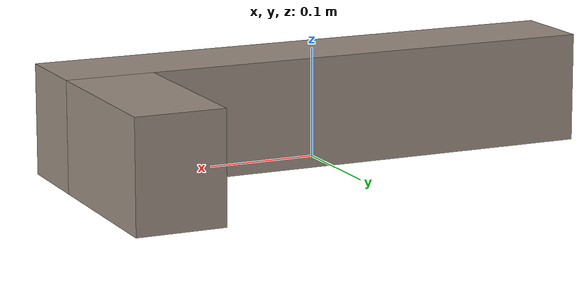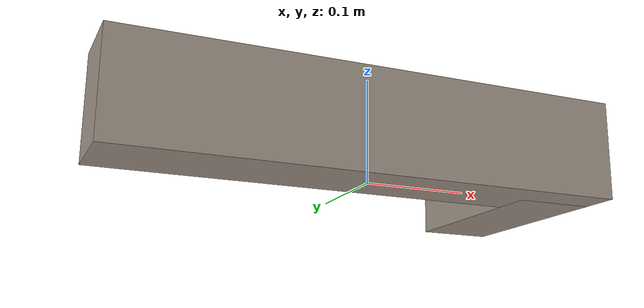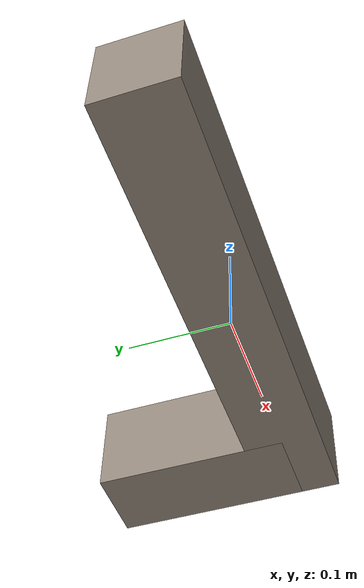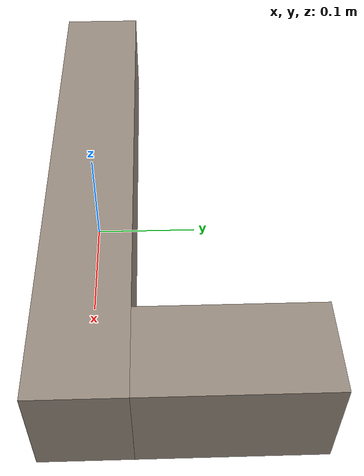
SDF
<sdf version="1.6">
    <model name="corner1">
        <allow_auto_disable>true</allow_auto_disable>
        <link name="link_1">
            <inertial>
                <pose>0 0.0 0.05 0 0 0</pose>
                <inertia>
                    <ixx>0.104</ixx>
                    <iyy>0.104</iyy>
                    <izz>0.104</izz>
                </inertia>
                <mass>10</mass>
            </inertial>
            <pose>0 0 0.05 0 0 0 0</pose>
            <visual name="visual1">
                <pose>0 0 0 0 0 0</pose>
                <geometry>
                    <box>
                        <size>0.5 0.08 0.1</size>
                    </box>
                </geometry>
                <material>
                    <ambient>0.6 0.55 0.5 1.0</ambient>
                    <diffuse>0.6 0.55 0.5 1.0</diffuse>
                </material>
            </visual>
            <visual name="visual2">
                <pose>0.21 0.10 0 0 0 1.5707</pose>
                <geometry>
                    <box>
                        <size>0.2 0.08 0.1</size>
                    </box>
                </geometry>
                <material>
                    <ambient>0.6 0.55 0.5 1.0</ambient>
                    <diffuse>0.6 0.55 0.5 1.0</diffuse>
                </material>
            </visual>
            <collision name="collision1">
                <geometry>
                    <box>
                        <size>0.5 0.08 0.1</size>
                    </box>
                </geometry>
                <surface>
                    <friction>
                        <ode>
                            <mu>0.2</mu>
                            <mu2>0.2</mu2>
                        </ode>
                    </friction>
                    <contact>
                        <ode>
                            <kp>1e10</kp>
                            <kd>1e10</kd>
                        </ode>
                    </contact>
                </surface>
            </collision>
            <collision name="collision2">
                <pose>0.21 0.1 0 0 0 1.5707</pose>
                <geometry>
                    <box>
                        <size>0.2 0.08 0.1</size>
                    </box>
                </geometry>
                <surface>
                    <friction>
                        <ode>
                            <mu>0.2</mu>
                            <mu2>0.2</mu2>
                        </ode>
                    </friction>
                    <contact>
                        <ode>
                            <kp>1e10</kp>
                            <kd>1e10</kd>
                        </ode>
                    </contact>
                </surface>
            </collision>
        </link>
    </model>
</sdf>
